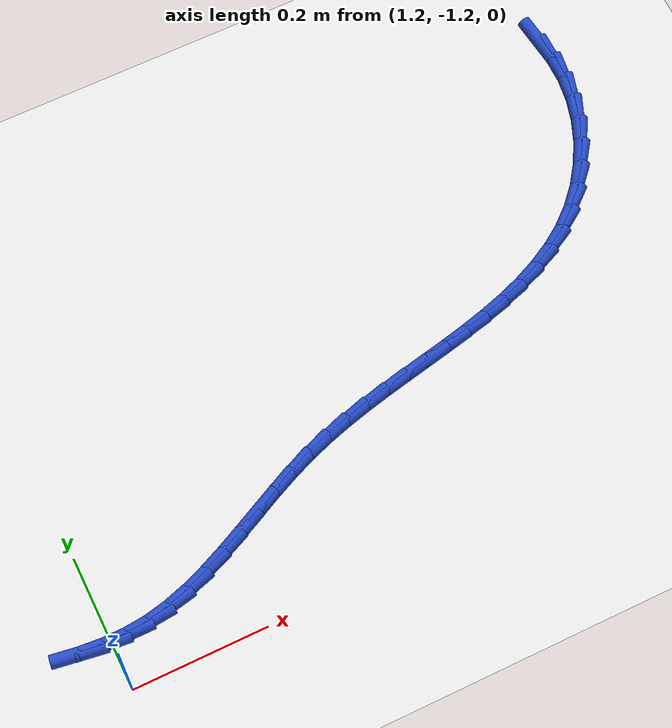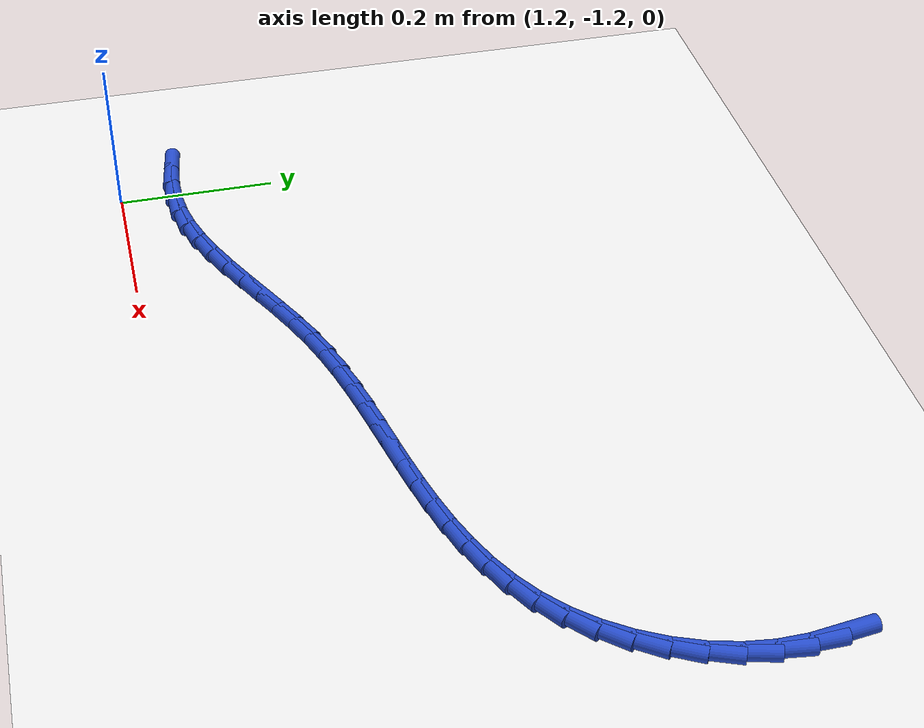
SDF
<sdf version="1.6">
 <world name="default">
  <model name="ground_plane">
   <static>1</static>
   <link name="link">
    <collision name="collision">
     <geometry><plane><normal>0 0 1</normal><size>100 100</size></plane></geometry>
     <surface><friction><ode><mu>100</mu><mu2>50</mu2></ode></friction></surface>
    </collision>
    <visual name="visual">
     <cast_shadows>0</cast_shadows>
     <geometry><plane><normal>0 0 1</normal><size>100 100</size></plane></geometry>
     <material>
      <script><uri>file://media/materials/scripts/gazebo.material</uri><name>Gazebo/WhiteGlow</name></script>
     </material>
    </visual>
   </link>
  </model>
  <model name="line">
   <link name="link_123">
    <pose>2.1401575666601613 -0.5652292903982427 0.01 0 1.57 -1.4416880618542678</pose>
    <collision name="collision">
     <geometry><cylinder><radius>0.01</radius><length>0.08</length></cylinder></geometry>
    </collision>
    <visual name="visual">
     <material>
      <script><name>Gazebo/Blue</name><uri>file://media/materials/scripts/gazebo.material</uri></script>
     </material>
     <geometry><cylinder><radius>0.01</radius><length>0.08</length></cylinder></geometry>
    </visual>
   </link>
   <link name="link_124">
    <pose>2.14473001271003 -0.6004478863975761 0.01 0 1.57 -1.5633274511015618</pose>
    <collision name="collision">
     <geometry><cylinder><radius>0.01</radius><length>0.08</length></cylinder></geometry>
    </collision>
    <visual name="visual">
     <material>
      <script><name>Gazebo/Blue</name><uri>file://media/materials/scripts/gazebo.material</uri></script>
     </material>
     <geometry><cylinder><radius>0.01</radius><length>0.08</length></cylinder></geometry>
    </visual>
   </link>
   <link name="link_125">
    <pose>2.144994526763749 -0.6358627394493018 0.01 0 1.57 1.4386494223326007</pose>
    <collision name="collision">
     <geometry><cylinder><radius>0.01</radius><length>0.08</length></cylinder></geometry>
    </collision>
    <visual name="visual">
     <material>
      <script><name>Gazebo/Blue</name><uri>file://media/materials/scripts/gazebo.material</uri></script>
     </material>
     <geometry><cylinder><radius>0.01</radius><length>0.08</length></cylinder></geometry>
    </visual>
   </link>
   <link name="link_126">
    <pose>2.1402757228905145 -0.6713634120660366 0.01 0 1.57 1.3066078154890457</pose>
    <collision name="collision">
     <geometry><cylinder><radius>0.01</radius><length>0.08</length></cylinder></geometry>
    </collision>
    <visual name="visual">
     <material>
      <script><name>Gazebo/Blue</name><uri>file://media/materials/scripts/gazebo.material</uri></script>
     </material>
     <geometry><cylinder><radius>0.01</radius><length>0.08</length></cylinder></geometry>
    </visual>
   </link>
   <link name="link_127">
    <pose>2.1307956187495396 -0.706408518855953 0.01 0 1.57 1.1841836093207105</pose>
    <collision name="collision">
     <geometry><cylinder><radius>0.01</radius><length>0.08</length></cylinder></geometry>
    </collision>
    <visual name="visual">
     <material>
      <script><name>Gazebo/Blue</name><uri>file://media/materials/scripts/gazebo.material</uri></script>
     </material>
     <geometry><cylinder><radius>0.01</radius><length>0.08</length></cylinder></geometry>
    </visual>
   </link>
   <link name="link_128">
    <pose>2.116973068699692 -0.7403621502196337 0.01 0 1.57 1.067436139034323</pose>
    <collision name="collision">
     <geometry><cylinder><radius>0.01</radius><length>0.08</length></cylinder></geometry>
    </collision>
    <visual name="visual">
     <material>
      <script><name>Gazebo/Blue</name><uri>file://media/materials/scripts/gazebo.material</uri></script>
     </material>
     <geometry><cylinder><radius>0.01</radius><length>0.08</length></cylinder></geometry>
    </visual>
   </link>
   <link name="link_129">
    <pose>2.099226927099838 -0.7725883965576621 0.01 0 1.57 0.9523185350801644</pose>
    <collision name="collision">
     <geometry><cylinder><radius>0.01</radius><length>0.08</length></cylinder></geometry>
    </collision>
    <visual name="visual">
     <material>
      <script><name>Gazebo/Blue</name><uri>file://media/materials/scripts/gazebo.material</uri></script>
     </material>
     <geometry><cylinder><radius>0.01</radius><length>0.08</length></cylinder></geometry>
    </visual>
   </link>
   <link name="link_130">
    <pose>2.077976048308846 -0.8024513482706205 0.01 0 1.57 0.8347128496299778</pose>
    <collision name="collision">
     <geometry><cylinder><radius>0.01</radius><length>0.08</length></cylinder></geometry>
    </collision>
    <visual name="visual">
     <material>
      <script><name>Gazebo/Blue</name><uri>file://media/materials/scripts/gazebo.material</uri></script>
     </material>
     <geometry><cylinder><radius>0.01</radius><length>0.08</length></cylinder></geometry>
    </visual>
   </link>
   <link name="link_131">
    <pose>2.053639286685581 -0.8293150957590916 0.01 0 1.57 0.7126925319178531</pose>
    <collision name="collision">
     <geometry><cylinder><radius>0.01</radius><length>0.08</length></cylinder></geometry>
    </collision>
    <visual name="visual">
     <material>
      <script><name>Gazebo/Blue</name><uri>file://media/materials/scripts/gazebo.material</uri></script>
     </material>
     <geometry><cylinder><radius>0.01</radius><length>0.08</length></cylinder></geometry>
    </visual>
   </link>
   <link name="link_132">
    <pose>2.026628858564759 -0.8526580826045804 0.01 0 1.57 0.598159795508978</pose>
    <collision name="collision">
     <geometry><cylinder><radius>0.01</radius><length>0.08</length></cylinder></geometry>
    </collision>
    <visual name="visual">
     <material>
      <script><name>Gazebo/Blue</name><uri>file://media/materials/scripts/gazebo.material</uri></script>
     </material>
     <geometry><cylinder><radius>0.01</radius><length>0.08</length></cylinder></geometry>
    </visual>
   </link>
   <link name="link_133">
    <pose>1.9973179171559567 -0.872631692485543 0.01 0 1.57 0.49821451637391667</pose>
    <collision name="collision">
     <geometry><cylinder><radius>0.01</radius><length>0.08</length></cylinder></geometry>
    </collision>
    <visual name="visual">
     <material>
      <script><name>Gazebo/Blue</name><uri>file://media/materials/scripts/gazebo.material</uri></script>
     </material>
     <geometry><cylinder><radius>0.01</radius><length>0.08</length></cylinder></geometry>
    </visual>
   </link>
   <link name="link_134">
    <pose>1.9660653739704712 -0.8896326506854739 0.01 0 1.57 0.4139422535714238</pose>
    <collision name="collision">
     <geometry><cylinder><radius>0.01</radius><length>0.08</length></cylinder></geometry>
    </collision>
    <visual name="visual">
     <material>
      <script><name>Gazebo/Blue</name><uri>file://media/materials/scripts/gazebo.material</uri></script>
     </material>
     <geometry><cylinder><radius>0.01</radius><length>0.08</length></cylinder></geometry>
    </visual>
   </link>
   <link name="link_135">
    <pose>1.9332301198075488 -0.9040580392942142 0.01 0 1.57 0.34518213589649005</pose>
    <collision name="collision">
     <geometry><cylinder><radius>0.01</radius><length>0.08</length></cylinder></geometry>
    </collision>
    <visual name="visual">
     <material>
      <script><name>Gazebo/Blue</name><uri>file://media/materials/scripts/gazebo.material</uri></script>
     </material>
     <geometry><cylinder><radius>0.01</radius><length>0.08</length></cylinder></geometry>
    </visual>
   </link>
   <link name="link_136">
    <pose>1.8991710454664352 -0.9163049404016046 0.01 0 1.57 0.29114927223493925</pose>
    <collision name="collision">
     <geometry><cylinder><radius>0.01</radius><length>0.08</length></cylinder></geometry>
    </collision>
    <visual name="visual">
     <material>
      <script><name>Gazebo/Blue</name><uri>file://media/materials/scripts/gazebo.material</uri></script>
     </material>
     <geometry><cylinder><radius>0.01</radius><length>0.08</length></cylinder></geometry>
    </visual>
   </link>
   <link name="link_137">
    <pose>1.8642470417463752 -0.9267704360974847 0.01 0 1.57 0.2509112144687305</pose>
    <collision name="collision">
     <geometry><cylinder><radius>0.01</radius><length>0.08</length></cylinder></geometry>
    </collision>
    <visual name="visual">
     <material>
      <script><name>Gazebo/Blue</name><uri>file://media/materials/scripts/gazebo.material</uri></script>
     </material>
     <geometry><cylinder><radius>0.01</radius><length>0.08</length></cylinder></geometry>
    </visual>
   </link>
   <link name="link_138">
    <pose>1.828816999446614 -0.9358516084716956 0.01 0 1.57 0.22369591817441575</pose>
    <collision name="collision">
     <geometry><cylinder><radius>0.01</radius><length>0.08</length></cylinder></geometry>
    </collision>
    <visual name="visual">
     <material>
      <script><name>Gazebo/Blue</name><uri>file://media/materials/scripts/gazebo.material</uri></script>
     </material>
     <geometry><cylinder><radius>0.01</radius><length>0.08</length></cylinder></geometry>
    </visual>
   </link>
   <link name="link_139">
    <pose>1.7932398093663982 -0.9439455396140771 0.01 0 1.57 0.20886384631039176</pose>
    <collision name="collision">
     <geometry><cylinder><radius>0.01</radius><length>0.08</length></cylinder></geometry>
    </collision>
    <visual name="visual">
     <material>
      <script><name>Gazebo/Blue</name><uri>file://media/materials/scripts/gazebo.material</uri></script>
     </material>
     <geometry><cylinder><radius>0.01</radius><length>0.08</length></cylinder></geometry>
    </visual>
   </link>
   <link name="link_140">
    <pose>1.757844983019163 -0.9514476487095401 0.01 0 1.57 0.20482359440519665</pose>
    <collision name="collision">
     <geometry><cylinder><radius>0.01</radius><length>0.08</length></cylinder></geometry>
    </collision>
    <visual name="visual">
     <material>
      <script><name>Gazebo/Blue</name><uri>file://media/materials/scripts/gazebo.material</uri></script>
     </material>
     <geometry><cylinder><radius>0.01</radius><length>0.08</length></cylinder></geometry>
    </visual>
   </link>
   <link name="link_141">
    <pose>1.7227379481323593 -0.9587406715158076 0.01 0 1.57 0.2110943246702978</pose>
    <collision name="collision">
     <geometry><cylinder><radius>0.01</radius><length>0.08</length></cylinder></geometry>
    </collision>
    <visual name="visual">
     <material>
      <script><name>Gazebo/Blue</name><uri>file://media/materials/scripts/gazebo.material</uri></script>
     </material>
     <geometry><cylinder><radius>0.01</radius><length>0.08</length></cylinder></geometry>
    </visual>
   </link>
   <link name="link_142">
    <pose>1.6879209108712943 -0.9662015013189496 0.01 0 1.57 0.22784641219477988</pose>
    <collision name="collision">
     <geometry><cylinder><radius>0.01</radius><length>0.08</length></cylinder></geometry>
    </collision>
    <visual name="visual">
     <material>
      <script><name>Gazebo/Blue</name><uri>file://media/materials/scripts/gazebo.material</uri></script>
     </material>
     <geometry><cylinder><radius>0.01</radius><length>0.08</length></cylinder></geometry>
    </visual>
   </link>
   <link name="link_143">
    <pose>1.653395527718645 -0.9742070002922989 0.01 0 1.57 0.25509826873567637</pose>
    <collision name="collision">
     <geometry><cylinder><radius>0.01</radius><length>0.08</length></cylinder></geometry>
    </collision>
    <visual name="visual">
     <material>
      <script><name>Gazebo/Blue</name><uri>file://media/materials/scripts/gazebo.material</uri></script>
     </material>
     <geometry><cylinder><radius>0.01</radius><length>0.08</length></cylinder></geometry>
    </visual>
   </link>
   <link name="link_144">
    <pose>1.6191634551570888 -0.9831340306091904 0.01 0 1.57 0.29265372695438596</pose>
    <collision name="collision">
     <geometry><cylinder><radius>0.01</radius><length>0.08</length></cylinder></geometry>
    </collision>
    <visual name="visual">
     <material>
      <script><name>Gazebo/Blue</name><uri>file://media/materials/scripts/gazebo.material</uri></script>
     </material>
     <geometry><cylinder><radius>0.01</radius><length>0.08</length></cylinder></geometry>
    </visual>
   </link>
   <link name="link_145">
    <pose>1.5852263496693022 -0.9933594544429573 0.01 0 1.57 0.3400211483701454</pose>
    <collision name="collision">
     <geometry><cylinder><radius>0.01</radius><length>0.08</length></cylinder></geometry>
    </collision>
    <visual name="visual">
     <material>
      <script><name>Gazebo/Blue</name><uri>file://media/materials/scripts/gazebo.material</uri></script>
     </material>
     <geometry><cylinder><radius>0.01</radius><length>0.08</length></cylinder></geometry>
    </visual>
   </link>
   <link name="link_146">
    <pose>1.5515858677379637 -1.0052601339669331 0.01 0 1.57 0.39305021493020154</pose>
    <collision name="collision">
     <geometry><cylinder><radius>0.01</radius><length>0.08</length></cylinder></geometry>
    </collision>
    <visual name="visual">
     <material>
      <script><name>Gazebo/Blue</name><uri>file://media/materials/scripts/gazebo.material</uri></script>
     </material>
     <geometry><cylinder><radius>0.01</radius><length>0.08</length></cylinder></geometry>
    </visual>
   </link>
   <link name="link_147">
    <pose>1.5182365175213939 -1.0190876083138467 0.01 0 1.57 0.4333604814716811</pose>
    <collision name="collision">
     <geometry><cylinder><radius>0.01</radius><length>0.08</length></cylinder></geometry>
    </collision>
    <visual name="visual">
     <material>
      <script><name>Gazebo/Blue</name><uri>file://media/materials/scripts/gazebo.material</uri></script>
     </material>
     <geometry><cylinder><radius>0.01</radius><length>0.08</length></cylinder></geometry>
    </visual>
   </link>
   <link name="link_148">
    <pose>1.48513349475592 -1.034404198834398 0.01 0 1.57 0.45571437456150743</pose>
    <collision name="collision">
     <geometry><cylinder><radius>0.01</radius><length>0.08</length></cylinder></geometry>
    </collision>
    <visual name="visual">
     <material>
      <script><name>Gazebo/Blue</name><uri>file://media/materials/scripts/gazebo.material</uri></script>
     </material>
     <geometry><cylinder><radius>0.01</radius><length>0.08</length></cylinder></geometry>
    </visual>
   </link>
   <link name="link_149">
    <pose>1.4522185523821014 -1.0505365503828266 0.01 0 1.57 0.46076390980225784</pose>
    <collision name="collision">
     <geometry><cylinder><radius>0.01</radius><length>0.08</length></cylinder></geometry>
    </collision>
    <visual name="visual">
     <material>
      <script><name>Gazebo/Blue</name><uri>file://media/materials/scripts/gazebo.material</uri></script>
     </material>
     <geometry><cylinder><radius>0.01</radius><length>0.08</length></cylinder></geometry>
    </visual>
   </link>
   <link name="link_150">
    <pose>1.4194334316323083 -1.0668111025476674 0.01 0 1.57 0.4485302625646909</pose>
    <collision name="collision">
     <geometry><cylinder><radius>0.01</radius><length>0.08</length></cylinder></geometry>
    </collision>
    <visual name="visual">
     <material>
      <script><name>Gazebo/Blue</name><uri>file://media/materials/scripts/gazebo.material</uri></script>
     </material>
     <geometry><cylinder><radius>0.01</radius><length>0.08</length></cylinder></geometry>
    </visual>
   </link>
   <link name="link_151">
    <pose>1.386719873738911 -1.0825542949174576 0.01 0 1.57 0.41834756291333625</pose>
    <collision name="collision">
     <geometry><cylinder><radius>0.01</radius><length>0.08</length></cylinder></geometry>
    </collision>
    <visual name="visual">
     <material>
      <script><name>Gazebo/Blue</name><uri>file://media/materials/scripts/gazebo.material</uri></script>
     </material>
     <geometry><cylinder><radius>0.01</radius><length>0.08</length></cylinder></geometry>
    </visual>
   </link>
   <link name="link_152">
    <pose>1.3540196199342818 -1.0970925670807312 0.01 0 1.57 0.3689146723055442</pose>
    <collision name="collision">
     <geometry><cylinder><radius>0.01</radius><length>0.08</length></cylinder></geometry>
    </collision>
    <visual name="visual">
     <material>
      <script><name>Gazebo/Blue</name><uri>file://media/materials/scripts/gazebo.material</uri></script>
     </material>
     <geometry><cylinder><radius>0.01</radius><length>0.08</length></cylinder></geometry>
    </visual>
   </link>
   <link name="link_153">
    <pose>1.3212744114507906 -1.1097523586260256 0.01 0 1.57 0.29851405369021344</pose>
    <collision name="collision">
     <geometry><cylinder><radius>0.01</radius><length>0.08</length></cylinder></geometry>
    </collision>
    <visual name="visual">
     <material>
      <script><name>Gazebo/Blue</name><uri>file://media/materials/scripts/gazebo.material</uri></script>
     </material>
     <geometry><cylinder><radius>0.01</radius><length>0.08</length></cylinder></geometry>
    </visual>
   </link>
   <link name="link_154">
    <pose>1.288425989520808 -1.1198601091418756 0.01 0 1.57 0.20554747653267536</pose>
    <collision name="collision">
     <geometry><cylinder><radius>0.01</radius><length>0.08</length></cylinder></geometry>
    </collision>
    <visual name="visual">
     <material>
      <script><name>Gazebo/Blue</name><uri>file://media/materials/scripts/gazebo.material</uri></script>
     </material>
     <geometry><cylinder><radius>0.01</radius><length>0.08</length></cylinder></geometry>
    </visual>
   </link>
   <link name="link_155">
    <pose>1.255416099480471 -1.1267424080181498 0.01 0 1.57 0.09711880539987694</pose>
    <collision name="collision">
     <geometry><cylinder><radius>0.01</radius><length>0.08</length></cylinder></geometry>
    </collision>
    <visual name="visual">
     <material>
      <script><name>Gazebo/Blue</name><uri>file://media/materials/scripts/gazebo.material</uri></script>
     </material>
     <geometry><cylinder><radius>0.01</radius><length>0.08</length></cylinder></geometry>
    </visual>
   </link>
   <link name="link_156">
    <pose>1.2221934255452087 -1.129979137171354 0.01 0 1.57 -0.0017170573194045954</pose>
    <collision name="collision">
     <geometry><cylinder><radius>0.01</radius><length>0.08</length></cylinder></geometry>
    </collision>
    <visual name="visual">
     <material>
      <script><name>Gazebo/Blue</name><uri>file://media/materials/scripts/gazebo.material</uri></script>
     </material>
     <geometry><cylinder><radius>0.01</radius><length>0.08</length></cylinder></geometry>
    </visual>
   </link>
   <link name="link_157">
    <pose>1.1887277868566062 -1.1299216746950231 0.01 0 1.57 -0.08439774060859331</pose>
    <collision name="collision">
     <geometry><cylinder><radius>0.01</radius><length>0.08</length></cylinder></geometry>
    </collision>
    <visual name="visual">
     <material>
      <script><name>Gazebo/Blue</name><uri>file://media/materials/scripts/gazebo.material</uri></script>
     </material>
     <geometry><cylinder><radius>0.01</radius><length>0.08</length></cylinder></geometry>
    </visual>
   </link>
   <link name="link_158">
    <pose>1.1549930119902592 -1.1270677565638192 0.01 0 1.57 -0.15027274336543392</pose>
    <collision name="collision">
     <geometry><cylinder><radius>0.01</radius><length>0.08</length></cylinder></geometry>
    </collision>
    <visual name="visual">
     <material>
      <script><name>Gazebo/Blue</name><uri>file://media/materials/scripts/gazebo.material</uri></script>
     </material>
     <geometry><cylinder><radius>0.01</radius><length>0.08</length></cylinder></geometry>
    </visual>
   </link>
  </model>
 </world>
</sdf>
